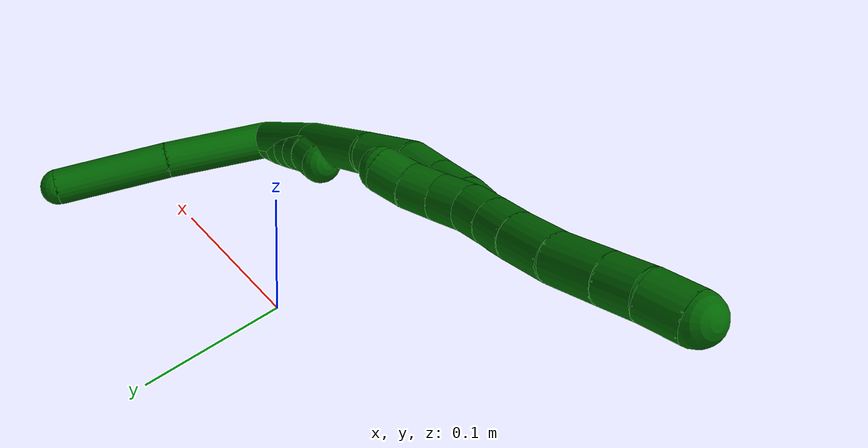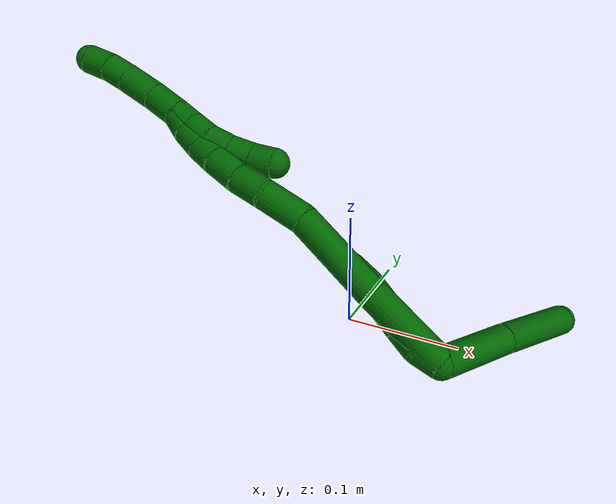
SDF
<sdf version="1.7">
 <world name="default">
  <model name="6">
   <static>0</static>
   <link name="6">
    <collision name="collision-cylinder-e_1_2_8">
     <pose>0.012734 -0.031238 0.011227 1.22576 0.366317 0.259062</pose>
     <geometry><cylinder><radius>0.0125</radius><length>0.071105</length></cylinder></geometry>
     <surface>
      <friction><ode><mu>1.16</mu><mu2>1.16</mu2><slip1>0</slip1><slip2>0</slip2></ode></friction>
      <contact><ode><kp>1e+06</kp><kd>1</kd><max_vel>0</max_vel><min_depth>0.001</min_depth></ode></contact>
     </surface>
    </collision>
    <visual name="visual-cylinder-e_1_2_8">
     <pose>0.012734 -0.031238 0.011227 1.22576 0.366317 0.259062</pose>
     <geometry><cylinder><radius>0.0125</radius><length>0.071105</length></cylinder></geometry>
     <material><ambient>0 0.392157 0.003922 1</ambient></material>
    </visual>
    <collision name="collision-cylinder-e_2_8_6">
     <pose>0.037982 -0.097476 0.035661 1.20999 0.322801 0.22423</pose>
     <geometry><cylinder><radius>0.0125</radius><length>0.078895</length></cylinder></geometry>
     <surface>
      <friction><ode><mu>1.16</mu><mu2>1.16</mu2><slip1>0</slip1><slip2>0</slip2></ode></friction>
      <contact><ode><kp>1e+06</kp><kd>1</kd><max_vel>0</max_vel><min_depth>0.001</min_depth></ode></contact>
     </surface>
    </collision>
    <visual name="visual-cylinder-e_2_8_6">
     <pose>0.037982 -0.097476 0.035661 1.20999 0.322801 0.22423</pose>
     <geometry><cylinder><radius>0.0125</radius><length>0.078895</length></cylinder></geometry>
     <material><ambient>0 0.392157 0.003922 1</ambient></material>
    </visual>
    <collision name="collision-cylinder-e_1_2_9">
     <pose>-0.002944 0.000332 -0.009551 -3.10689 -0.298818 2.91203</pose>
     <geometry><cylinder><radius>0.0125</radius><length>0.02</length></cylinder></geometry>
     <surface>
      <friction><ode><mu>1.16</mu><mu2>1.16</mu2><slip1>0</slip1><slip2>0</slip2></ode></friction>
      <contact><ode><kp>1e+06</kp><kd>1</kd><max_vel>0</max_vel><min_depth>0.001</min_depth></ode></contact>
     </surface>
    </collision>
    <visual name="visual-cylinder-e_1_2_9">
     <pose>-0.002944 0.000332 -0.009551 -3.10689 -0.298818 2.91203</pose>
     <geometry><cylinder><radius>0.0125</radius><length>0.02</length></cylinder></geometry>
     <material><ambient>0 0.392157 0.003922 1</ambient></material>
    </visual>
    <collision name="collision-cylinder-e_2_9_10">
     <pose>-0.005899 -0.000214 -0.029064 3.05373 -0.00108 -0.024564</pose>
     <geometry><cylinder><radius>0.0125</radius><length>0.02</length></cylinder></geometry>
     <surface>
      <friction><ode><mu>1.16</mu><mu2>1.16</mu2><slip1>0</slip1><slip2>0</slip2></ode></friction>
      <contact><ode><kp>1e+06</kp><kd>1</kd><max_vel>0</max_vel><min_depth>0.001</min_depth></ode></contact>
     </surface>
    </collision>
    <visual name="visual-cylinder-e_2_9_10">
     <pose>-0.005899 -0.000214 -0.029064 3.05373 -0.00108 -0.024564</pose>
     <geometry><cylinder><radius>0.0125</radius><length>0.02</length></cylinder></geometry>
     <material><ambient>0 0.392157 0.003922 1</ambient></material>
    </visual>
    <collision name="collision-cylinder-e_3_10_11">
     <pose>-0.005594 -0.002038 -0.048975 3.0468 0.031514 0.641529</pose>
     <geometry><cylinder><radius>0.0125</radius><length>0.02</length></cylinder></geometry>
     <surface>
      <friction><ode><mu>1.16</mu><mu2>1.16</mu2><slip1>0</slip1><slip2>0</slip2></ode></friction>
      <contact><ode><kp>1e+06</kp><kd>1</kd><max_vel>0</max_vel><min_depth>0.001</min_depth></ode></contact>
     </surface>
    </collision>
    <visual name="visual-cylinder-e_3_10_11">
     <pose>-0.005594 -0.002038 -0.048975 3.0468 0.031514 0.641529</pose>
     <geometry><cylinder><radius>0.0125</radius><length>0.02</length></cylinder></geometry>
     <material><ambient>0 0.392157 0.003922 1</ambient></material>
    </visual>
    <collision name="collision-cylinder-e_4_11_12">
     <pose>-0.004984 -0.003949 -0.068874 3.0449 0.02957 0.593151</pose>
     <geometry><cylinder><radius>0.0125</radius><length>0.02</length></cylinder></geometry>
     <surface>
      <friction><ode><mu>1.16</mu><mu2>1.16</mu2><slip1>0</slip1><slip2>0</slip2></ode></friction>
      <contact><ode><kp>1e+06</kp><kd>1</kd><max_vel>0</max_vel><min_depth>0.001</min_depth></ode></contact>
     </surface>
    </collision>
    <visual name="visual-cylinder-e_4_11_12">
     <pose>-0.004984 -0.003949 -0.068874 3.0449 0.02957 0.593151</pose>
     <geometry><cylinder><radius>0.0125</radius><length>0.02</length></cylinder></geometry>
     <material><ambient>0 0.392157 0.003922 1</ambient></material>
    </visual>
    <collision name="collision-cylinder-e_5_12_5">
     <pose>-0.006513 -0.006566 -0.088515 2.9727 -0.183574 -1.65451</pose>
     <geometry><cylinder><radius>0.0125</radius><length>0.02</length></cylinder></geometry>
     <surface>
      <friction><ode><mu>1.16</mu><mu2>1.16</mu2><slip1>0</slip1><slip2>0</slip2></ode></friction>
      <contact><ode><kp>1e+06</kp><kd>1</kd><max_vel>0</max_vel><min_depth>0.001</min_depth></ode></contact>
     </surface>
    </collision>
    <visual name="visual-cylinder-e_5_12_5">
     <pose>-0.006513 -0.006566 -0.088515 2.9727 -0.183574 -1.65451</pose>
     <geometry><cylinder><radius>0.0125</radius><length>0.02</length></cylinder></geometry>
     <material><ambient>0 0.392157 0.003922 1</ambient></material>
    </visual>
    <collision name="collision-cylinder-e_1_2_13">
     <pose>-0.001279 0.00219 -0.035391 -3.07978 -0.03606 1.05605</pose>
     <geometry><cylinder><radius>0.0125</radius><length>0.070963</length></cylinder></geometry>
     <surface>
      <friction><ode><mu>1.16</mu><mu2>1.16</mu2><slip1>0</slip1><slip2>0</slip2></ode></friction>
      <contact><ode><kp>1e+06</kp><kd>1</kd><max_vel>0</max_vel><min_depth>0.001</min_depth></ode></contact>
     </surface>
    </collision>
    <visual name="visual-cylinder-e_1_2_13">
     <pose>-0.001279 0.00219 -0.035391 -3.07978 -0.03606 1.05605</pose>
     <geometry><cylinder><radius>0.0125</radius><length>0.070963</length></cylinder></geometry>
     <material><ambient>0 0.392157 0.003922 1</ambient></material>
    </visual>
    <collision name="collision-cylinder-e_2_13_14">
     <pose>-0.004336 0.003427 -0.110119 3.11737 -0.045136 -2.15648</pose>
     <geometry><cylinder><radius>0.0125</radius><length>0.078779</length></cylinder></geometry>
     <surface>
      <friction><ode><mu>1.16</mu><mu2>1.16</mu2><slip1>0</slip1><slip2>0</slip2></ode></friction>
      <contact><ode><kp>1e+06</kp><kd>1</kd><max_vel>0</max_vel><min_depth>0.001</min_depth></ode></contact>
     </surface>
    </collision>
    <visual name="visual-cylinder-e_2_13_14">
     <pose>-0.004336 0.003427 -0.110119 3.11737 -0.045136 -2.15648</pose>
     <geometry><cylinder><radius>0.0125</radius><length>0.078779</length></cylinder></geometry>
     <material><ambient>0 0.392157 0.003922 1</ambient></material>
    </visual>
    <collision name="collision-cylinder-e_3_14_15">
     <pose>-0.010326 0.005342 -0.166965 -2.97924 -0.233147 1.92725</pose>
     <geometry><cylinder><radius>0.0125</radius><length>0.036469</length></cylinder></geometry>
     <surface>
      <friction><ode><mu>1.16</mu><mu2>1.16</mu2><slip1>0</slip1><slip2>0</slip2></ode></friction>
      <contact><ode><kp>1e+06</kp><kd>1</kd><max_vel>0</max_vel><min_depth>0.001</min_depth></ode></contact>
     </surface>
    </collision>
    <visual name="visual-cylinder-e_3_14_15">
     <pose>-0.010326 0.005342 -0.166965 -2.97924 -0.233147 1.92725</pose>
     <geometry><cylinder><radius>0.0125</radius><length>0.036469</length></cylinder></geometry>
     <material><ambient>0 0.392157 0.003922 1</ambient></material>
    </visual>
    <collision name="collision-cylinder-e_4_15_16">
     <pose>-0.019203 0.00711 -0.196975 3.05383 -0.355823 -2.6626</pose>
     <geometry><cylinder><radius>0.0125</radius><length>0.026778</length></cylinder></geometry>
     <surface>
      <friction><ode><mu>1.16</mu><mu2>1.16</mu2><slip1>0</slip1><slip2>0</slip2></ode></friction>
      <contact><ode><kp>1e+06</kp><kd>1</kd><max_vel>0</max_vel><min_depth>0.001</min_depth></ode></contact>
     </surface>
    </collision>
    <visual name="visual-cylinder-e_4_15_16">
     <pose>-0.019203 0.00711 -0.196975 3.05383 -0.355823 -2.6626</pose>
     <geometry><cylinder><radius>0.0125</radius><length>0.026778</length></cylinder></geometry>
     <material><ambient>0 0.392157 0.003922 1</ambient></material>
    </visual>
    <collision name="collision-cylinder-e_5_16_17">
     <pose>-0.027144 0.004333 -0.222251 3.01108 -0.249018 -2.17919</pose>
     <geometry><cylinder><radius>0.0125</radius><length>0.026587</length></cylinder></geometry>
     <surface>
      <friction><ode><mu>1.16</mu><mu2>1.16</mu2><slip1>0</slip1><slip2>0</slip2></ode></friction>
      <contact><ode><kp>1e+06</kp><kd>1</kd><max_vel>0</max_vel><min_depth>0.001</min_depth></ode></contact>
     </surface>
    </collision>
    <visual name="visual-cylinder-e_5_16_17">
     <pose>-0.027144 0.004333 -0.222251 3.01108 -0.249018 -2.17919</pose>
     <geometry><cylinder><radius>0.0125</radius><length>0.026587</length></cylinder></geometry>
     <material><ambient>0 0.392157 0.003922 1</ambient></material>
    </visual>
    <collision name="collision-cylinder-e_6_17_18">
     <pose>-0.032771 0.000287 -0.244466 2.89571 -0.237063 -1.53392</pose>
     <geometry><cylinder><radius>0.0125</radius><length>0.020027</length></cylinder></geometry>
     <surface>
      <friction><ode><mu>1.16</mu><mu2>1.16</mu2><slip1>0</slip1><slip2>0</slip2></ode></friction>
      <contact><ode><kp>1e+06</kp><kd>1</kd><max_vel>0</max_vel><min_depth>0.001</min_depth></ode></contact>
     </surface>
    </collision>
    <visual name="visual-cylinder-e_6_17_18">
     <pose>-0.032771 0.000287 -0.244466 2.89571 -0.237063 -1.53392</pose>
     <geometry><cylinder><radius>0.0125</radius><length>0.020027</length></cylinder></geometry>
     <material><ambient>0 0.392157 0.003922 1</ambient></material>
    </visual>
    <collision name="collision-cylinder-e_7_18_19">
     <pose>-0.036264 -0.004065 -0.263678 2.94139 -0.113934 -1.0328</pose>
     <geometry><cylinder><radius>0.0125</radius><length>0.020072</length></cylinder></geometry>
     <surface>
      <friction><ode><mu>1.16</mu><mu2>1.16</mu2><slip1>0</slip1><slip2>0</slip2></ode></friction>
      <contact><ode><kp>1e+06</kp><kd>1</kd><max_vel>0</max_vel><min_depth>0.001</min_depth></ode></contact>
     </surface>
    </collision>
    <visual name="visual-cylinder-e_7_18_19">
     <pose>-0.036264 -0.004065 -0.263678 2.94139 -0.113934 -1.0328</pose>
     <geometry><cylinder><radius>0.0125</radius><length>0.020072</length></cylinder></geometry>
     <material><ambient>0 0.392157 0.003922 1</ambient></material>
    </visual>
    <collision name="collision-cylinder-e_8_19_1">
     <pose>-0.036966 -0.008311 -0.283347 2.91682 0.043165 0.377958</pose>
     <geometry><cylinder><radius>0.0125</radius><length>0.020325</length></cylinder></geometry>
     <surface>
      <friction><ode><mu>1.16</mu><mu2>1.16</mu2><slip1>0</slip1><slip2>0</slip2></ode></friction>
      <contact><ode><kp>1e+06</kp><kd>1</kd><max_vel>0</max_vel><min_depth>0.001</min_depth></ode></contact>
     </surface>
    </collision>
    <visual name="visual-cylinder-e_8_19_1">
     <pose>-0.036966 -0.008311 -0.283347 2.91682 0.043165 0.377958</pose>
     <geometry><cylinder><radius>0.0125</radius><length>0.020325</length></cylinder></geometry>
     <material><ambient>0 0.392157 0.003922 1</ambient></material>
    </visual>
    <collision name="collision-cylinder-e_1_1_20">
     <pose>-0.039835 -0.011388 -0.306636 3.08088 -0.241703 -2.65158</pose>
     <geometry><cylinder><radius>0.0125</radius><length>0.027636</length></cylinder></geometry>
     <surface>
      <friction><ode><mu>1.16</mu><mu2>1.16</mu2><slip1>0</slip1><slip2>0</slip2></ode></friction>
      <contact><ode><kp>1e+06</kp><kd>1</kd><max_vel>0</max_vel><min_depth>0.001</min_depth></ode></contact>
     </surface>
    </collision>
    <visual name="visual-cylinder-e_1_1_20">
     <pose>-0.039835 -0.011388 -0.306636 3.08088 -0.241703 -2.65158</pose>
     <geometry><cylinder><radius>0.0125</radius><length>0.027636</length></cylinder></geometry>
     <material><ambient>0 0.392157 0.003922 1</ambient></material>
    </visual>
    <collision name="collision-cylinder-e_2_20_21">
     <pose>-0.046866 -0.011472 -0.334704 -3.09192 -0.248183 2.74846</pose>
     <geometry><cylinder><radius>0.0125</radius><length>0.030318</length></cylinder></geometry>
     <surface>
      <friction><ode><mu>1.16</mu><mu2>1.16</mu2><slip1>0</slip1><slip2>0</slip2></ode></friction>
      <contact><ode><kp>1e+06</kp><kd>1</kd><max_vel>0</max_vel><min_depth>0.001</min_depth></ode></contact>
     </surface>
    </collision>
    <visual name="visual-cylinder-e_2_20_21">
     <pose>-0.046866 -0.011472 -0.334704 -3.09192 -0.248183 2.74846</pose>
     <geometry><cylinder><radius>0.0125</radius><length>0.030318</length></cylinder></geometry>
     <material><ambient>0 0.392157 0.003922 1</ambient></material>
    </visual>
    <collision name="collision-cylinder-e_3_21_22">
     <pose>-0.053374 -0.009999 -0.35908 -3.0651 -0.278769 2.60904</pose>
     <geometry><cylinder><radius>0.0125</radius><length>0.020237</length></cylinder></geometry>
     <surface>
      <friction><ode><mu>1.16</mu><mu2>1.16</mu2><slip1>0</slip1><slip2>0</slip2></ode></friction>
      <contact><ode><kp>1e+06</kp><kd>1</kd><max_vel>0</max_vel><min_depth>0.001</min_depth></ode></contact>
     </surface>
    </collision>
    <visual name="visual-cylinder-e_3_21_22">
     <pose>-0.053374 -0.009999 -0.35908 -3.0651 -0.278769 2.60904</pose>
     <geometry><cylinder><radius>0.0125</radius><length>0.020237</length></cylinder></geometry>
     <material><ambient>0 0.392157 0.003922 1</ambient></material>
    </visual>
    <collision name="collision-cylinder-e_4_22_4">
     <pose>-0.06066 -0.008248 -0.37866 -3.03989 -0.425526 2.67885</pose>
     <geometry><cylinder><radius>0.0125</radius><length>0.02181</length></cylinder></geometry>
     <surface>
      <friction><ode><mu>1.16</mu><mu2>1.16</mu2><slip1>0</slip1><slip2>0</slip2></ode></friction>
      <contact><ode><kp>1e+06</kp><kd>1</kd><max_vel>0</max_vel><min_depth>0.001</min_depth></ode></contact>
     </surface>
    </collision>
    <visual name="visual-cylinder-e_4_22_4">
     <pose>-0.06066 -0.008248 -0.37866 -3.03989 -0.425526 2.67885</pose>
     <geometry><cylinder><radius>0.0125</radius><length>0.02181</length></cylinder></geometry>
     <material><ambient>0 0.392157 0.003922 1</ambient></material>
    </visual>
    <collision name="collision-cylinder-e_1_1_23">
     <pose>-0.034268 -0.00945 -0.283569 -0.115613 0.227979 -0.013251</pose>
     <geometry><cylinder><radius>0.0125</radius><length>0.02</length></cylinder></geometry>
     <surface>
      <friction><ode><mu>1.16</mu><mu2>1.16</mu2><slip1>0</slip1><slip2>0</slip2></ode></friction>
      <contact><ode><kp>1e+06</kp><kd>1</kd><max_vel>0</max_vel><min_depth>0.001</min_depth></ode></contact>
     </surface>
    </collision>
    <visual name="visual-cylinder-e_1_1_23">
     <pose>-0.034268 -0.00945 -0.283569 -0.115613 0.227979 -0.013251</pose>
     <geometry><cylinder><radius>0.0125</radius><length>0.02</length></cylinder></geometry>
     <material><ambient>0 0.392157 0.003922 1</ambient></material>
    </visual>
    <collision name="collision-cylinder-e_2_23_24">
     <pose>-0.029684 -0.007424 -0.264208 -0.092871 0.234504 -0.010947</pose>
     <geometry><cylinder><radius>0.0125</radius><length>0.02</length></cylinder></geometry>
     <surface>
      <friction><ode><mu>1.16</mu><mu2>1.16</mu2><slip1>0</slip1><slip2>0</slip2></ode></friction>
      <contact><ode><kp>1e+06</kp><kd>1</kd><max_vel>0</max_vel><min_depth>0.001</min_depth></ode></contact>
     </surface>
    </collision>
    <visual name="visual-cylinder-e_2_23_24">
     <pose>-0.029684 -0.007424 -0.264208 -0.092871 0.234504 -0.010947</pose>
     <geometry><cylinder><radius>0.0125</radius><length>0.02</length></cylinder></geometry>
     <material><ambient>0 0.392157 0.003922 1</ambient></material>
    </visual>
    <collision name="collision-cylinder-e_3_24_25">
     <pose>-0.024037 -0.007815 -0.245181 0.137483 0.338762 0.023548</pose>
     <geometry><cylinder><radius>0.0125</radius><length>0.02</length></cylinder></geometry>
     <surface>
      <friction><ode><mu>1.16</mu><mu2>1.16</mu2><slip1>0</slip1><slip2>0</slip2></ode></friction>
      <contact><ode><kp>1e+06</kp><kd>1</kd><max_vel>0</max_vel><min_depth>0.001</min_depth></ode></contact>
     </surface>
    </collision>
    <visual name="visual-cylinder-e_3_24_25">
     <pose>-0.024037 -0.007815 -0.245181 0.137483 0.338762 0.023548</pose>
     <geometry><cylinder><radius>0.0125</radius><length>0.02</length></cylinder></geometry>
     <material><ambient>0 0.392157 0.003922 1</ambient></material>
    </visual>
    <collision name="collision-cylinder-e_4_25_26">
     <pose>-0.016382 -0.01102 -0.22703 0.213751 0.448011 0.048875</pose>
     <geometry><cylinder><radius>0.0125</radius><length>0.02</length></cylinder></geometry>
     <surface>
      <friction><ode><mu>1.16</mu><mu2>1.16</mu2><slip1>0</slip1><slip2>0</slip2></ode></friction>
      <contact><ode><kp>1e+06</kp><kd>1</kd><max_vel>0</max_vel><min_depth>0.001</min_depth></ode></contact>
     </surface>
    </collision>
    <visual name="visual-cylinder-e_4_25_26">
     <pose>-0.016382 -0.01102 -0.22703 0.213751 0.448011 0.048875</pose>
     <geometry><cylinder><radius>0.0125</radius><length>0.02</length></cylinder></geometry>
     <material><ambient>0 0.392157 0.003922 1</ambient></material>
    </visual>
    <collision name="collision-cylinder-e_5_26_3">
     <pose>-0.006587 -0.014127 -0.209933 0.143175 0.578023 0.042638</pose>
     <geometry><cylinder><radius>0.0125</radius><length>0.02</length></cylinder></geometry>
     <surface>
      <friction><ode><mu>1.16</mu><mu2>1.16</mu2><slip1>0</slip1><slip2>0</slip2></ode></friction>
      <contact><ode><kp>1e+06</kp><kd>1</kd><max_vel>0</max_vel><min_depth>0.001</min_depth></ode></contact>
     </surface>
    </collision>
    <visual name="visual-cylinder-e_5_26_3">
     <pose>-0.006587 -0.014127 -0.209933 0.143175 0.578023 0.042638</pose>
     <geometry><cylinder><radius>0.0125</radius><length>0.02</length></cylinder></geometry>
     <material><ambient>0 0.392157 0.003922 1</ambient></material>
    </visual>
    <collision name="collision-sphere-3">
     <pose>-0.001123 -0.015322 -0.201643 0 -0 0</pose>
     <geometry><sphere><radius>0.0125</radius></sphere></geometry>
     <surface>
      <friction><ode><mu>1.16</mu><mu2>1.16</mu2><slip1>0</slip1><slip2>0</slip2></ode></friction>
      <contact><ode><kp>1e+06</kp><kd>1</kd><max_vel>0</max_vel><min_depth>0.001</min_depth></ode></contact>
     </surface>
    </collision>
    <visual name="visual-sphere-3">
     <pose>-0.001123 -0.015322 -0.201643 0 -0 0</pose>
     <geometry><sphere><radius>0.0125</radius></sphere></geometry>
     <material><ambient>0 0.392157 0.003922 1</ambient></material>
    </visual>
    <collision name="collision-sphere-26">
     <pose>-0.012051 -0.012932 -0.218222 0 -0 0</pose>
     <geometry><sphere><radius>0.0125</radius></sphere></geometry>
     <surface>
      <friction><ode><mu>1.16</mu><mu2>1.16</mu2><slip1>0</slip1><slip2>0</slip2></ode></friction>
      <contact><ode><kp>1e+06</kp><kd>1</kd><max_vel>0</max_vel><min_depth>0.001</min_depth></ode></contact>
     </surface>
    </collision>
    <visual name="visual-sphere-26">
     <pose>-0.012051 -0.012932 -0.218222 0 -0 0</pose>
     <geometry><sphere><radius>0.0125</radius></sphere></geometry>
     <material><ambient>0 0.392157 0.003922 1</ambient></material>
    </visual>
    <collision name="collision-sphere-25">
     <pose>-0.020714 -0.009108 -0.235838 0 -0 0</pose>
     <geometry><sphere><radius>0.0125</radius></sphere></geometry>
     <surface>
      <friction><ode><mu>1.16</mu><mu2>1.16</mu2><slip1>0</slip1><slip2>0</slip2></ode></friction>
      <contact><ode><kp>1e+06</kp><kd>1</kd><max_vel>0</max_vel><min_depth>0.001</min_depth></ode></contact>
     </surface>
    </collision>
    <visual name="visual-sphere-25">
     <pose>-0.020714 -0.009108 -0.235838 0 -0 0</pose>
     <geometry><sphere><radius>0.0125</radius></sphere></geometry>
     <material><ambient>0 0.392157 0.003922 1</ambient></material>
    </visual>
    <collision name="collision-sphere-24">
     <pose>-0.027361 -0.006522 -0.254524 0 -0 0</pose>
     <geometry><sphere><radius>0.0125</radius></sphere></geometry>
     <surface>
      <friction><ode><mu>1.16</mu><mu2>1.16</mu2><slip1>0</slip1><slip2>0</slip2></ode></friction>
      <contact><ode><kp>1e+06</kp><kd>1</kd><max_vel>0</max_vel><min_depth>0.001</min_depth></ode></contact>
     </surface>
    </collision>
    <visual name="visual-sphere-24">
     <pose>-0.027361 -0.006522 -0.254524 0 -0 0</pose>
     <geometry><sphere><radius>0.0125</radius></sphere></geometry>
     <material><ambient>0 0.392157 0.003922 1</ambient></material>
    </visual>
    <collision name="collision-sphere-23">
     <pose>-0.032008 -0.008326 -0.273892 0 -0 0</pose>
     <geometry><sphere><radius>0.0125</radius></sphere></geometry>
     <surface>
      <friction><ode><mu>1.16</mu><mu2>1.16</mu2><slip1>0</slip1><slip2>0</slip2></ode></friction>
      <contact><ode><kp>1e+06</kp><kd>1</kd><max_vel>0</max_vel><min_depth>0.001</min_depth></ode></contact>
     </surface>
    </collision>
    <visual name="visual-sphere-23">
     <pose>-0.032008 -0.008326 -0.273892 0 -0 0</pose>
     <geometry><sphere><radius>0.0125</radius></sphere></geometry>
     <material><ambient>0 0.392157 0.003922 1</ambient></material>
    </visual>
    <collision name="collision-sphere-4">
     <pose>-0.065162 -0.007239 -0.388541 0 -0 0</pose>
     <geometry><sphere><radius>0.0125</radius></sphere></geometry>
     <surface>
      <friction><ode><mu>1.16</mu><mu2>1.16</mu2><slip1>0</slip1><slip2>0</slip2></ode></friction>
      <contact><ode><kp>1e+06</kp><kd>1</kd><max_vel>0</max_vel><min_depth>0.001</min_depth></ode></contact>
     </surface>
    </collision>
    <visual name="visual-sphere-4">
     <pose>-0.065162 -0.007239 -0.388541 0 -0 0</pose>
     <geometry><sphere><radius>0.0125</radius></sphere></geometry>
     <material><ambient>0 0.392157 0.003922 1</ambient></material>
    </visual>
    <collision name="collision-sphere-22">
     <pose>-0.056159 -0.009256 -0.368779 0 -0 0</pose>
     <geometry><sphere><radius>0.0125</radius></sphere></geometry>
     <surface>
      <friction><ode><mu>1.16</mu><mu2>1.16</mu2><slip1>0</slip1><slip2>0</slip2></ode></friction>
      <contact><ode><kp>1e+06</kp><kd>1</kd><max_vel>0</max_vel><min_depth>0.001</min_depth></ode></contact>
     </surface>
    </collision>
    <visual name="visual-sphere-22">
     <pose>-0.056159 -0.009256 -0.368779 0 -0 0</pose>
     <geometry><sphere><radius>0.0125</radius></sphere></geometry>
     <material><ambient>0 0.392157 0.003922 1</ambient></material>
    </visual>
    <collision name="collision-sphere-21">
     <pose>-0.05059 -0.010743 -0.34938 0 -0 0</pose>
     <geometry><sphere><radius>0.0125</radius></sphere></geometry>
     <surface>
      <friction><ode><mu>1.16</mu><mu2>1.16</mu2><slip1>0</slip1><slip2>0</slip2></ode></friction>
      <contact><ode><kp>1e+06</kp><kd>1</kd><max_vel>0</max_vel><min_depth>0.001</min_depth></ode></contact>
     </surface>
    </collision>
    <visual name="visual-sphere-21">
     <pose>-0.05059 -0.010743 -0.34938 0 -0 0</pose>
     <geometry><sphere><radius>0.0125</radius></sphere></geometry>
     <material><ambient>0 0.392157 0.003922 1</ambient></material>
    </visual>
    <collision name="collision-sphere-20">
     <pose>-0.043143 -0.012202 -0.320028 0 -0 0</pose>
     <geometry><sphere><radius>0.0125</radius></sphere></geometry>
     <surface>
      <friction><ode><mu>1.16</mu><mu2>1.16</mu2><slip1>0</slip1><slip2>0</slip2></ode></friction>
      <contact><ode><kp>1e+06</kp><kd>1</kd><max_vel>0</max_vel><min_depth>0.001</min_depth></ode></contact>
     </surface>
    </collision>
    <visual name="visual-sphere-20">
     <pose>-0.043143 -0.012202 -0.320028 0 -0 0</pose>
     <geometry><sphere><radius>0.0125</radius></sphere></geometry>
     <material><ambient>0 0.392157 0.003922 1</ambient></material>
    </visual>
    <collision name="collision-sphere-11">
     <pose>-0.005279 -0.002984 -0.058925 0 -0 0</pose>
     <geometry><sphere><radius>0.0125</radius></sphere></geometry>
     <surface>
      <friction><ode><mu>1.16</mu><mu2>1.16</mu2><slip1>0</slip1><slip2>0</slip2></ode></friction>
      <contact><ode><kp>1e+06</kp><kd>1</kd><max_vel>0</max_vel><min_depth>0.001</min_depth></ode></contact>
     </surface>
    </collision>
    <visual name="visual-sphere-11">
     <pose>-0.005279 -0.002984 -0.058925 0 -0 0</pose>
     <geometry><sphere><radius>0.0125</radius></sphere></geometry>
     <material><ambient>0 0.392157 0.003922 1</ambient></material>
    </visual>
    <collision name="collision-sphere-10">
     <pose>-0.005909 -0.001092 -0.039025 0 -0 0</pose>
     <geometry><sphere><radius>0.0125</radius></sphere></geometry>
     <surface>
      <friction><ode><mu>1.16</mu><mu2>1.16</mu2><slip1>0</slip1><slip2>0</slip2></ode></friction>
      <contact><ode><kp>1e+06</kp><kd>1</kd><max_vel>0</max_vel><min_depth>0.001</min_depth></ode></contact>
     </surface>
    </collision>
    <visual name="visual-sphere-10">
     <pose>-0.005909 -0.001092 -0.039025 0 -0 0</pose>
     <geometry><sphere><radius>0.0125</radius></sphere></geometry>
     <material><ambient>0 0.392157 0.003922 1</ambient></material>
    </visual>
    <collision name="collision-sphere-6">
     <pose>0.050496 -0.132477 0.048867 0 -0 0</pose>
     <geometry><sphere><radius>0.0125</radius></sphere></geometry>
     <surface>
      <friction><ode><mu>1.16</mu><mu2>1.16</mu2><slip1>0</slip1><slip2>0</slip2></ode></friction>
      <contact><ode><kp>1e+06</kp><kd>1</kd><max_vel>0</max_vel><min_depth>0.001</min_depth></ode></contact>
     </surface>
    </collision>
    <visual name="visual-sphere-6">
     <pose>0.050496 -0.132477 0.048867 0 -0 0</pose>
     <geometry><sphere><radius>0.0125</radius></sphere></geometry>
     <material><ambient>0 0.392157 0.003922 1</ambient></material>
    </visual>
    <collision name="collision-sphere-9">
     <pose>-0.005888 0.000663 -0.019102 0 -0 0</pose>
     <geometry><sphere><radius>0.0125</radius></sphere></geometry>
     <surface>
      <friction><ode><mu>1.16</mu><mu2>1.16</mu2><slip1>0</slip1><slip2>0</slip2></ode></friction>
      <contact><ode><kp>1e+06</kp><kd>1</kd><max_vel>0</max_vel><min_depth>0.001</min_depth></ode></contact>
     </surface>
    </collision>
    <visual name="visual-sphere-9">
     <pose>-0.005888 0.000663 -0.019102 0 -0 0</pose>
     <geometry><sphere><radius>0.0125</radius></sphere></geometry>
     <material><ambient>0 0.392157 0.003922 1</ambient></material>
    </visual>
    <collision name="collision-sphere-2">
     <geometry><sphere><radius>0.0125</radius></sphere></geometry>
     <surface>
      <friction><ode><mu>1.16</mu><mu2>1.16</mu2><slip1>0</slip1><slip2>0</slip2></ode></friction>
      <contact><ode><kp>1e+06</kp><kd>1</kd><max_vel>0</max_vel><min_depth>0.001</min_depth></ode></contact>
     </surface>
    </collision>
    <visual name="visual-sphere-2">
     <geometry><sphere><radius>0.0125</radius></sphere></geometry>
     <material><ambient>0 0.392157 0.003922 1</ambient></material>
    </visual>
    <collision name="collision-sphere-19">
     <pose>-0.037405 -0.006048 -0.27345 0 -0 0</pose>
     <geometry><sphere><radius>0.0125</radius></sphere></geometry>
     <surface>
      <friction><ode><mu>1.16</mu><mu2>1.16</mu2><slip1>0</slip1><slip2>0</slip2></ode></friction>
      <contact><ode><kp>1e+06</kp><kd>1</kd><max_vel>0</max_vel><min_depth>0.001</min_depth></ode></contact>
     </surface>
    </collision>
    <visual name="visual-sphere-19">
     <pose>-0.037405 -0.006048 -0.27345 0 -0 0</pose>
     <geometry><sphere><radius>0.0125</radius></sphere></geometry>
     <material><ambient>0 0.392157 0.003922 1</ambient></material>
    </visual>
    <collision name="collision-sphere-8">
     <pose>0.025468 -0.062475 0.022454 0 -0 0</pose>
     <geometry><sphere><radius>0.0125</radius></sphere></geometry>
     <surface>
      <friction><ode><mu>1.16</mu><mu2>1.16</mu2><slip1>0</slip1><slip2>0</slip2></ode></friction>
      <contact><ode><kp>1e+06</kp><kd>1</kd><max_vel>0</max_vel><min_depth>0.001</min_depth></ode></contact>
     </surface>
    </collision>
    <visual name="visual-sphere-8">
     <pose>0.025468 -0.062475 0.022454 0 -0 0</pose>
     <geometry><sphere><radius>0.0125</radius></sphere></geometry>
     <material><ambient>0 0.392157 0.003922 1</ambient></material>
    </visual>
    <collision name="collision-sphere-12">
     <pose>-0.004688 -0.004914 -0.078823 0 -0 0</pose>
     <geometry><sphere><radius>0.0125</radius></sphere></geometry>
     <surface>
      <friction><ode><mu>1.16</mu><mu2>1.16</mu2><slip1>0</slip1><slip2>0</slip2></ode></friction>
      <contact><ode><kp>1e+06</kp><kd>1</kd><max_vel>0</max_vel><min_depth>0.001</min_depth></ode></contact>
     </surface>
    </collision>
    <visual name="visual-sphere-12">
     <pose>-0.004688 -0.004914 -0.078823 0 -0 0</pose>
     <geometry><sphere><radius>0.0125</radius></sphere></geometry>
     <material><ambient>0 0.392157 0.003922 1</ambient></material>
    </visual>
    <collision name="collision-sphere-5">
     <pose>-0.008339 -0.008219 -0.098207 0 -0 0</pose>
     <geometry><sphere><radius>0.0125</radius></sphere></geometry>
     <surface>
      <friction><ode><mu>1.16</mu><mu2>1.16</mu2><slip1>0</slip1><slip2>0</slip2></ode></friction>
      <contact><ode><kp>1e+06</kp><kd>1</kd><max_vel>0</max_vel><min_depth>0.001</min_depth></ode></contact>
     </surface>
    </collision>
    <visual name="visual-sphere-5">
     <pose>-0.008339 -0.008219 -0.098207 0 -0 0</pose>
     <geometry><sphere><radius>0.0125</radius></sphere></geometry>
     <material><ambient>0 0.392157 0.003922 1</ambient></material>
    </visual>
    <collision name="collision-sphere-13">
     <pose>-0.002558 0.004381 -0.070782 0 -0 0</pose>
     <geometry><sphere><radius>0.0125</radius></sphere></geometry>
     <surface>
      <friction><ode><mu>1.16</mu><mu2>1.16</mu2><slip1>0</slip1><slip2>0</slip2></ode></friction>
      <contact><ode><kp>1e+06</kp><kd>1</kd><max_vel>0</max_vel><min_depth>0.001</min_depth></ode></contact>
     </surface>
    </collision>
    <visual name="visual-sphere-13">
     <pose>-0.002558 0.004381 -0.070782 0 -0 0</pose>
     <geometry><sphere><radius>0.0125</radius></sphere></geometry>
     <material><ambient>0 0.392157 0.003922 1</ambient></material>
    </visual>
    <collision name="collision-sphere-14">
     <pose>-0.006113 0.002474 -0.149457 0 -0 0</pose>
     <geometry><sphere><radius>0.0125</radius></sphere></geometry>
     <surface>
      <friction><ode><mu>1.16</mu><mu2>1.16</mu2><slip1>0</slip1><slip2>0</slip2></ode></friction>
      <contact><ode><kp>1e+06</kp><kd>1</kd><max_vel>0</max_vel><min_depth>0.001</min_depth></ode></contact>
     </surface>
    </collision>
    <visual name="visual-sphere-14">
     <pose>-0.006113 0.002474 -0.149457 0 -0 0</pose>
     <geometry><sphere><radius>0.0125</radius></sphere></geometry>
     <material><ambient>0 0.392157 0.003922 1</ambient></material>
    </visual>
    <collision name="collision-sphere-15">
     <pose>-0.014539 0.00821 -0.184473 0 -0 0</pose>
     <geometry><sphere><radius>0.0125</radius></sphere></geometry>
     <surface>
      <friction><ode><mu>1.16</mu><mu2>1.16</mu2><slip1>0</slip1><slip2>0</slip2></ode></friction>
      <contact><ode><kp>1e+06</kp><kd>1</kd><max_vel>0</max_vel><min_depth>0.001</min_depth></ode></contact>
     </surface>
    </collision>
    <visual name="visual-sphere-15">
     <pose>-0.014539 0.00821 -0.184473 0 -0 0</pose>
     <geometry><sphere><radius>0.0125</radius></sphere></geometry>
     <material><ambient>0 0.392157 0.003922 1</ambient></material>
    </visual>
    <collision name="collision-sphere-16">
     <pose>-0.023867 0.00601 -0.209477 0 -0 0</pose>
     <geometry><sphere><radius>0.0125</radius></sphere></geometry>
     <surface>
      <friction><ode><mu>1.16</mu><mu2>1.16</mu2><slip1>0</slip1><slip2>0</slip2></ode></friction>
      <contact><ode><kp>1e+06</kp><kd>1</kd><max_vel>0</max_vel><min_depth>0.001</min_depth></ode></contact>
     </surface>
    </collision>
    <visual name="visual-sphere-16">
     <pose>-0.023867 0.00601 -0.209477 0 -0 0</pose>
     <geometry><sphere><radius>0.0125</radius></sphere></geometry>
     <material><ambient>0 0.392157 0.003922 1</ambient></material>
    </visual>
    <collision name="collision-sphere-17">
     <pose>-0.03042 0.002656 -0.235025 0 -0 0</pose>
     <geometry><sphere><radius>0.0125</radius></sphere></geometry>
     <surface>
      <friction><ode><mu>1.16</mu><mu2>1.16</mu2><slip1>0</slip1><slip2>0</slip2></ode></friction>
      <contact><ode><kp>1e+06</kp><kd>1</kd><max_vel>0</max_vel><min_depth>0.001</min_depth></ode></contact>
     </surface>
    </collision>
    <visual name="visual-sphere-17">
     <pose>-0.03042 0.002656 -0.235025 0 -0 0</pose>
     <geometry><sphere><radius>0.0125</radius></sphere></geometry>
     <material><ambient>0 0.392157 0.003922 1</ambient></material>
    </visual>
    <collision name="collision-sphere-18">
     <pose>-0.035123 -0.002082 -0.253907 0 -0 0</pose>
     <geometry><sphere><radius>0.0125</radius></sphere></geometry>
     <surface>
      <friction><ode><mu>1.16</mu><mu2>1.16</mu2><slip1>0</slip1><slip2>0</slip2></ode></friction>
      <contact><ode><kp>1e+06</kp><kd>1</kd><max_vel>0</max_vel><min_depth>0.001</min_depth></ode></contact>
     </surface>
    </collision>
    <visual name="visual-sphere-18">
     <pose>-0.035123 -0.002082 -0.253907 0 -0 0</pose>
     <geometry><sphere><radius>0.0125</radius></sphere></geometry>
     <material><ambient>0 0.392157 0.003922 1</ambient></material>
    </visual>
    <collision name="collision-sphere-1">
     <pose>-0.036528 -0.010574 -0.293245 0 -0 0</pose>
     <geometry><sphere><radius>0.0125</radius></sphere></geometry>
     <surface>
      <friction><ode><mu>1.16</mu><mu2>1.16</mu2><slip1>0</slip1><slip2>0</slip2></ode></friction>
      <contact><ode><kp>1e+06</kp><kd>1</kd><max_vel>0</max_vel><min_depth>0.001</min_depth></ode></contact>
     </surface>
    </collision>
    <visual name="visual-sphere-1">
     <pose>-0.036528 -0.010574 -0.293245 0 -0 0</pose>
     <geometry><sphere><radius>0.0125</radius></sphere></geometry>
     <material><ambient>0 0.392157 0.003922 1</ambient></material>
    </visual>
    <inertial>
     <pose>-0.010588 -0.015361 -0.139253 0 -0 0</pose>
     <mass>0.75</mass>
     <inertia><ixx>7.1e-05</ixx><ixy>0</ixy><ixz>0</ixz><iyy>5.6e-05</iyy><iyz>0</iyz><izz>2.3e-05</izz></inertia>
    </inertial>
   </link>
   <pose>0.104604 -0.068981 0.032731 2.7824 -0.86979 0.300067</pose>
  </model>
 </world>
</sdf>
